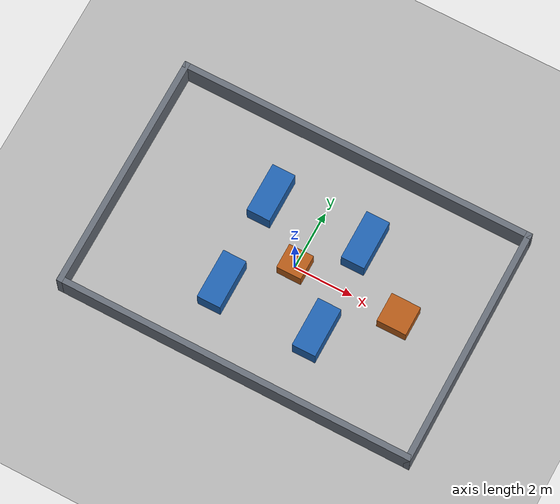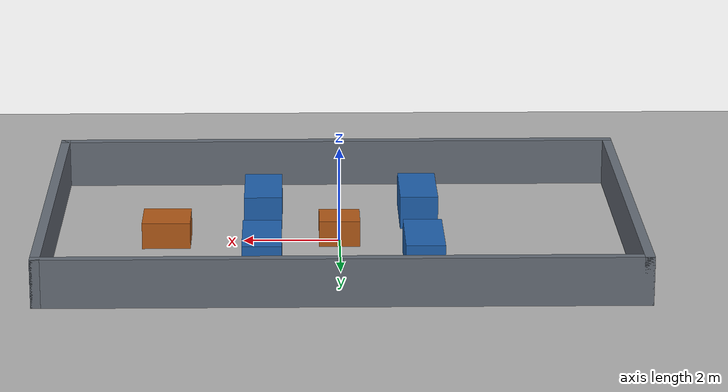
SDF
<?xml version='1.0' encoding='utf-8'?>
<sdf version="1.6">
  <world name="warehouse_demo">
    <gravity>0 0 -9.8</gravity>
    <light name="sun" type="directional">
      <pose>0 0 10 0 0 0</pose>
      <diffuse>0.85 0.85 0.85 1</diffuse>
      <specular>0.2 0.2 0.2 1</specular>
      <direction>-0.3 -0.4 -1</direction>
    </light>
    <model name="floor">
      <static>true</static>
      <link name="link">
        <collision name="collision">
          <geometry>
            <plane>
              <normal>0 0 1</normal>
              <size>20 20</size>
            </plane>
          </geometry>
        </collision>
        <visual name="visual">
          <geometry>
            <plane>
              <normal>0 0 1</normal>
              <size>20 20</size>
            </plane>
          </geometry>
          <material>
            <ambient>0.7 0.7 0.7 1</ambient>
            <diffuse>0.7 0.7 0.7 1</diffuse>
          </material>
        </visual>
      </link>
    </model>
    <model name="north_wall">
      <static>true</static>
      <pose>0 4 0.5 0 0 0</pose>
      <link name="link">
        <collision name="collision">
          <geometry>
            <box>
              <size>12.2 0.2 1</size>
            </box>
          </geometry>
        </collision>
        <visual name="visual">
          <geometry>
            <box>
              <size>12.2 0.2 1</size>
            </box>
          </geometry>
          <material>
            <ambient>0.4 0.43 0.47 1</ambient>
            <diffuse>0.4 0.43 0.47 1</diffuse>
          </material>
        </visual>
      </link>
    </model>
    <model name="south_wall">
      <static>true</static>
      <pose>0 -4 0.5 0 0 0</pose>
      <link name="link">
        <collision name="collision">
          <geometry>
            <box>
              <size>12.2 0.2 1</size>
            </box>
          </geometry>
        </collision>
        <visual name="visual">
          <geometry>
            <box>
              <size>12.2 0.2 1</size>
            </box>
          </geometry>
          <material>
            <ambient>0.4 0.43 0.47 1</ambient>
            <diffuse>0.4 0.43 0.47 1</diffuse>
          </material>
        </visual>
      </link>
    </model>
    <model name="east_wall">
      <static>true</static>
      <pose>6 0 0.5 0 0 0</pose>
      <link name="link">
        <collision name="collision">
          <geometry>
            <box>
              <size>0.2 8.2 1</size>
            </box>
          </geometry>
        </collision>
        <visual name="visual">
          <geometry>
            <box>
              <size>0.2 8.2 1</size>
            </box>
          </geometry>
          <material>
            <ambient>0.4 0.43 0.47 1</ambient>
            <diffuse>0.4 0.43 0.47 1</diffuse>
          </material>
        </visual>
      </link>
    </model>
    <model name="west_wall">
      <static>true</static>
      <pose>-6 0 0.5 0 0 0</pose>
      <link name="link">
        <collision name="collision">
          <geometry>
            <box>
              <size>0.2 8.2 1</size>
            </box>
          </geometry>
        </collision>
        <visual name="visual">
          <geometry>
            <box>
              <size>0.2 8.2 1</size>
            </box>
          </geometry>
          <material>
            <ambient>0.4 0.43 0.47 1</ambient>
            <diffuse>0.4 0.43 0.47 1</diffuse>
          </material>
        </visual>
      </link>
    </model>
    <model name="shelf_west_north">
      <static>true</static>
      <pose>-1.7 1.6 0.35 0 0 0</pose>
      <link name="link">
        <collision name="collision">
          <geometry>
            <box>
              <size>0.8 1.7 0.7</size>
            </box>
          </geometry>
        </collision>
        <visual name="visual">
          <geometry>
            <box>
              <size>0.8 1.7 0.7</size>
            </box>
          </geometry>
          <material>
            <ambient>0.12 0.38 0.68 1</ambient>
            <diffuse>0.12 0.38 0.68 1</diffuse>
          </material>
        </visual>
      </link>
    </model>
    <model name="shelf_west_south">
      <static>true</static>
      <pose>-1.7 -1.6 0.35 0 0 0</pose>
      <link name="link">
        <collision name="collision">
          <geometry>
            <box>
              <size>0.8 1.7 0.7</size>
            </box>
          </geometry>
        </collision>
        <visual name="visual">
          <geometry>
            <box>
              <size>0.8 1.7 0.7</size>
            </box>
          </geometry>
          <material>
            <ambient>0.12 0.38 0.68 1</ambient>
            <diffuse>0.12 0.38 0.68 1</diffuse>
          </material>
        </visual>
      </link>
    </model>
    <model name="shelf_east_north">
      <static>true</static>
      <pose>1.6 1.6 0.35 0 0 0</pose>
      <link name="link">
        <collision name="collision">
          <geometry>
            <box>
              <size>0.8 1.7 0.7</size>
            </box>
          </geometry>
        </collision>
        <visual name="visual">
          <geometry>
            <box>
              <size>0.8 1.7 0.7</size>
            </box>
          </geometry>
          <material>
            <ambient>0.12 0.38 0.68 1</ambient>
            <diffuse>0.12 0.38 0.68 1</diffuse>
          </material>
        </visual>
      </link>
    </model>
    <model name="shelf_east_south">
      <static>true</static>
      <pose>1.6 -1.6 0.35 0 0 0</pose>
      <link name="link">
        <collision name="collision">
          <geometry>
            <box>
              <size>0.8 1.7 0.7</size>
            </box>
          </geometry>
        </collision>
        <visual name="visual">
          <geometry>
            <box>
              <size>0.8 1.7 0.7</size>
            </box>
          </geometry>
          <material>
            <ambient>0.12 0.38 0.68 1</ambient>
            <diffuse>0.12 0.38 0.68 1</diffuse>
          </material>
        </visual>
      </link>
    </model>
    <model name="crate_centre">
      <static>true</static>
      <pose>0 0 0.275 0 0 0</pose>
      <link name="link">
        <collision name="collision">
          <geometry>
            <box>
              <size>0.85 0.85 0.55</size>
            </box>
          </geometry>
        </collision>
        <visual name="visual">
          <geometry>
            <box>
              <size>0.85 0.85 0.55</size>
            </box>
          </geometry>
          <material>
            <ambient>0.7 0.35 0.09 1</ambient>
            <diffuse>0.7 0.35 0.09 1</diffuse>
          </material>
        </visual>
      </link>
    </model>
    <model name="crate_east">
      <static>true</static>
      <pose>3.6 0 0.275 0 0 0</pose>
      <link name="link">
        <collision name="collision">
          <geometry>
            <box>
              <size>1 1 0.55</size>
            </box>
          </geometry>
        </collision>
        <visual name="visual">
          <geometry>
            <box>
              <size>1 1 0.55</size>
            </box>
          </geometry>
          <material>
            <ambient>0.7 0.35 0.09 1</ambient>
            <diffuse>0.7 0.35 0.09 1</diffuse>
          </material>
        </visual>
      </link>
    </model>
  </world>
</sdf>
